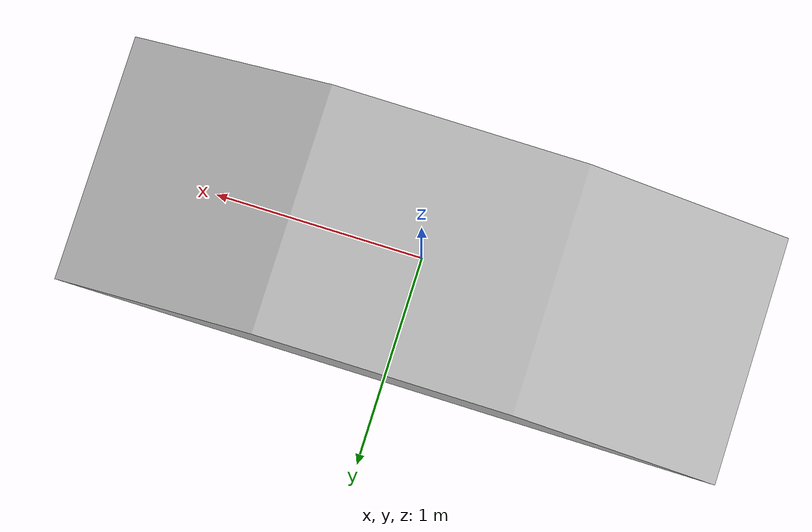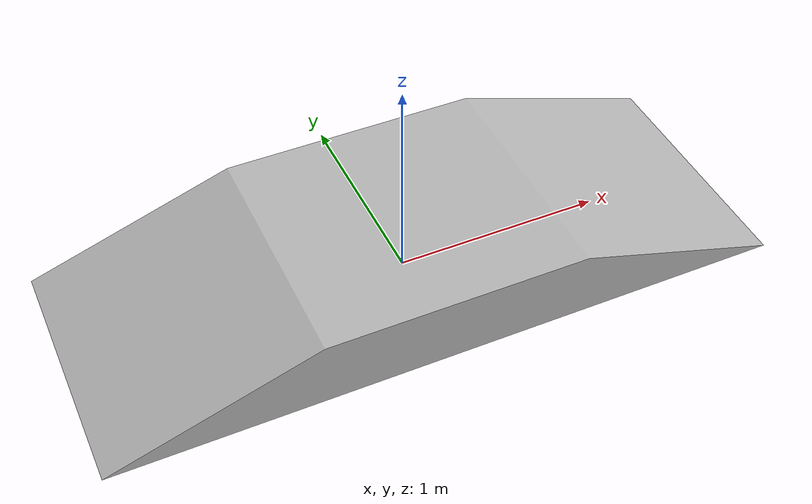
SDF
<?xml version="1.0" ?>
<sdf version="1.5">
  <model name="hill">
    <static>true</static>
    <pose>0 0 0 0 0 1.57</pose>
    <link name="link">
      <collision name="hillC">
        <geometry>
          <mesh>
            <uri>model://hill/new_hill.dae</uri>
            <scale>1.0 1.0 1.0</scale>
          </mesh>
        </geometry>
      </collision>
      <visual name="hillV">
        <cast_shadows>true</cast_shadows>
        <geometry>
          <mesh>
            <uri>model://hill/new_hill.dae</uri>
            <scale>1.0 1.0 1.0</scale>
          </mesh>
        </geometry>
      </visual>
    </link>
  </model>
</sdf>
